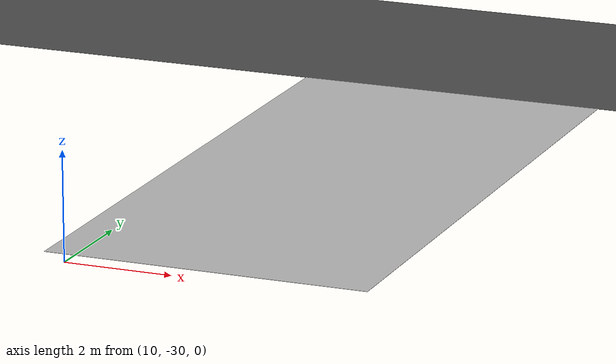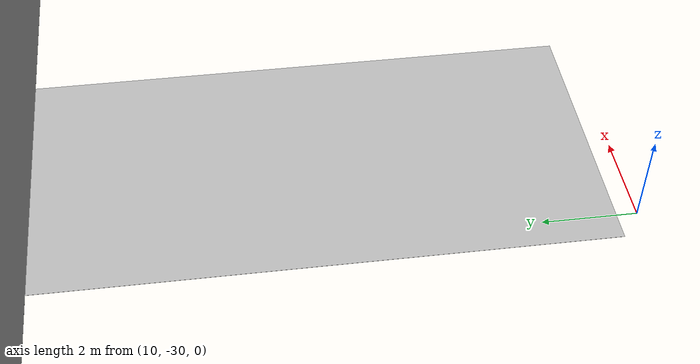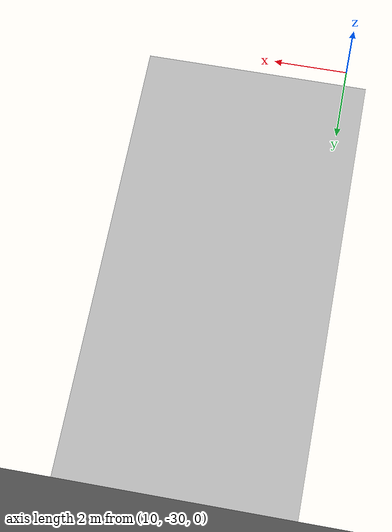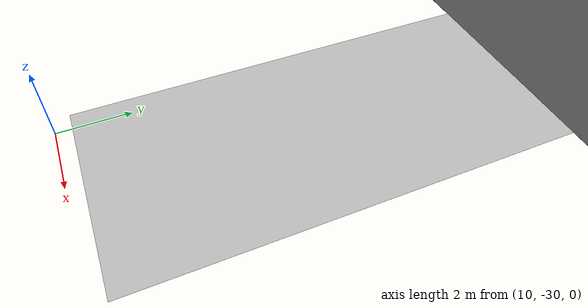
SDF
<sdf version="1.6">
 <world name="default">
  <light name="sun" type="directional">
   <pose>0 0 10 0 -0 0</pose>
   <diffuse>0.8 0.8 0.8 1</diffuse>
   <specular>0.2 0.2 0.2 1</specular>
   <attenuation>
    <range>1000</range>
    <constant>0.9</constant>
    <linear>0.01</linear>
    <quadratic>0.001</quadratic>
   </attenuation>
   <direction>-0.5 0.1 -0.9</direction>
  </light>
  <gravity>0 0 -9.8</gravity>
  <magnetic_field>6e-06 2.3e-05 -4.2e-05</magnetic_field>
  <atmosphere type="adiabatic"/>
  <physics name="default_physics" default="0" type="ode">
   <max_step_size>0.001</max_step_size>
   <real_time_factor>1</real_time_factor>
   <real_time_update_rate>1000</real_time_update_rate>
  </physics>
  <scene><ambient>0.4 0.4 0.4 1</ambient><background>0.7 0.7 0.7 1</background><shadows>1</shadows></scene>
  <spherical_coordinates>
   <surface_model>EARTH_WGS84</surface_model>
   <latitude_deg>0</latitude_deg>
   <longitude_deg>0</longitude_deg>
   <elevation>0</elevation>
   <heading_deg>0</heading_deg>
  </spherical_coordinates>
  <model name="my_mesh">
   <pose>0.416485 -9.06959 0 0 -0 0</pose>
   <static>1</static>
   <link name="body">
    <collision name="collision">
     <geometry><mesh><uri>model://mesh_path/meshes/path.dae</uri></mesh></geometry>
     <surface><friction><ode><mu>100</mu><mu2>50</mu2></ode></friction></surface>
    </collision>
    <visual name="bot_road1">
     <geometry><plane><size>6 5</size><normal>0 0 1</normal></plane></geometry>
     <material>
      <script><uri>file://media/materials/scripts/gazebo.material</uri><name>Gazebo/Lanes_6</name></script>
     </material>
    </visual>
    <visual name="main_road">
     <pose>5 -5.5 0 0 -0 1.57</pose>
     <geometry><plane><size>6 40</size><normal>0 0 1</normal></plane></geometry>
     <material>
      <script><uri>file://media/materials/scripts/gazebo.material</uri><name>Gazebo/Road</name></script>
     </material>
    </visual>
    <visual name="up_road">
     <pose>12 -14.5 0 0 -0 0</pose>
     <geometry><plane><size>6 12</size><normal>0 0 1</normal></plane></geometry>
     <material>
      <script><uri>file://media/materials/scripts/gazebo.material</uri><name>Gazebo/Lanes_6</name></script>
     </material>
    </visual>
   </link>
  </model>
 </world>
</sdf>
